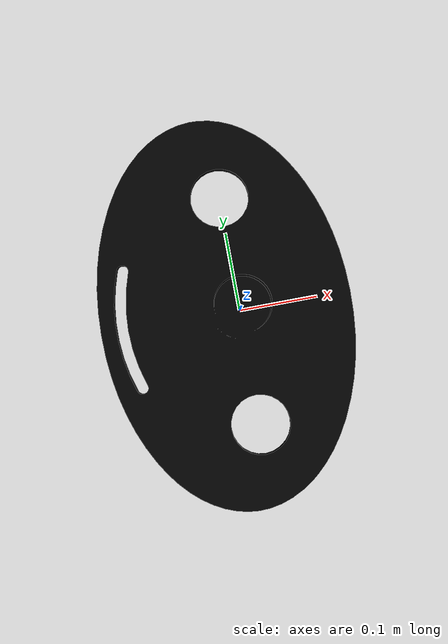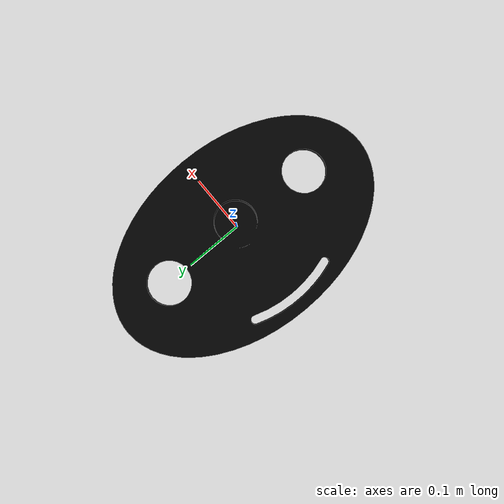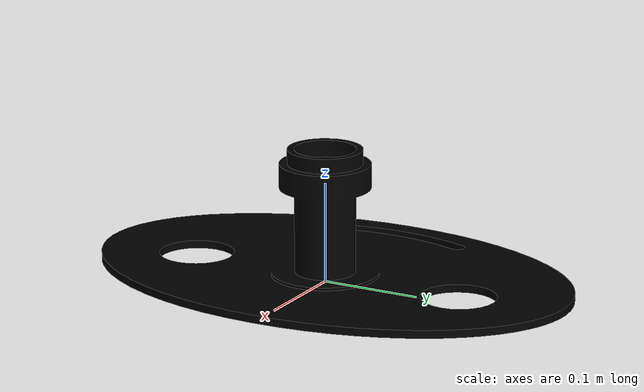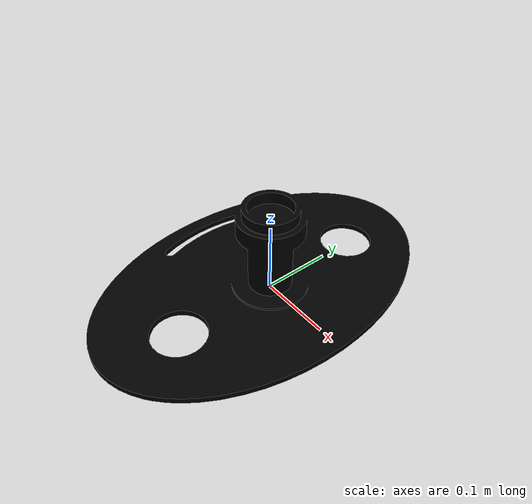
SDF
<?xml version='1.0'?>
<sdf version='1.7'>
<model name='TEO_root'>
  <link name='RootWaist_links'>
    <pose>0 0 0 0 -0 0</pose>
    <inertial>
      <pose>-0.010985 -0.000323 0.033148 0 -0 0</pose>
      <mass>2.5</mass>
      <inertia>
        <ixx>0.038530767</ixx>
        <ixy>-0.000000135</ixy>
        <ixz>0.000238121</ixz>
        <iyy>0.017354343</iyy>
        <iyz>-4.8e-10</iyz>
        <izz>0.053231634</izz>
      </inertia>
    </inertial>
    <visual name='RootWaist_links_visual'>
      <geometry>
        <mesh>
          <uri>model://teo/meshes/visual/RootWaist_links.dae</uri>
        </mesh>
      </geometry>
      <material>
        <ambient>0 0 0 1</ambient>
        <diffuse>0 0 0 1</diffuse>
        <specular>0 0 0 1</specular>
      </material>
    </visual>
    <collision name='RootWaist_links_collision'>
      <geometry>
        <mesh>
          <uri>model://teo/meshes/collision/RootWaist_links.stl</uri>
        </mesh>
      </geometry>
    </collision>
  </link>
</model>
</sdf>
